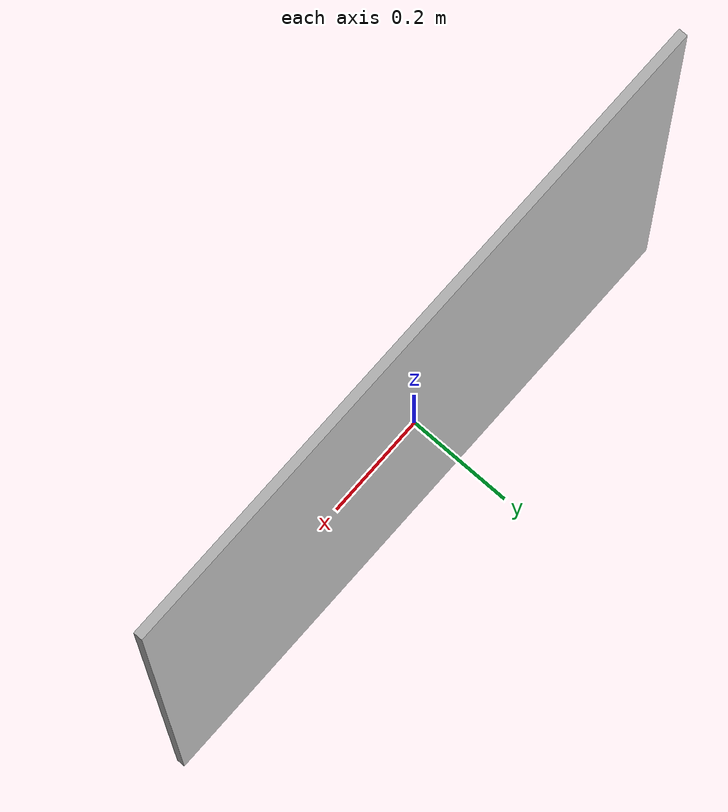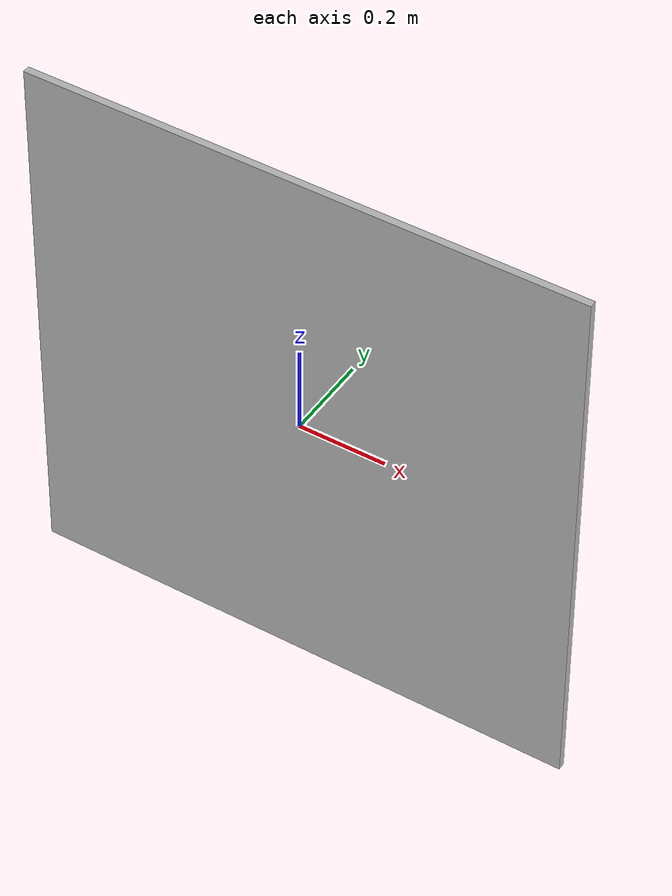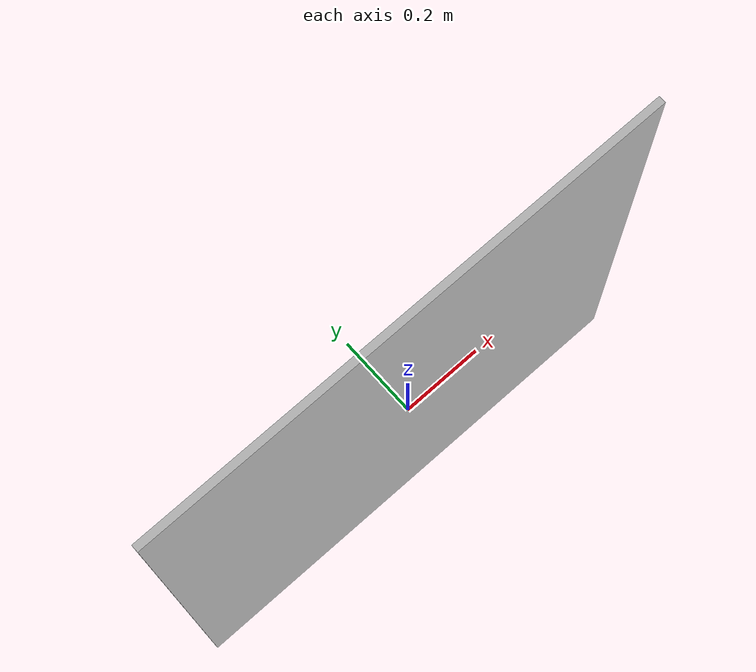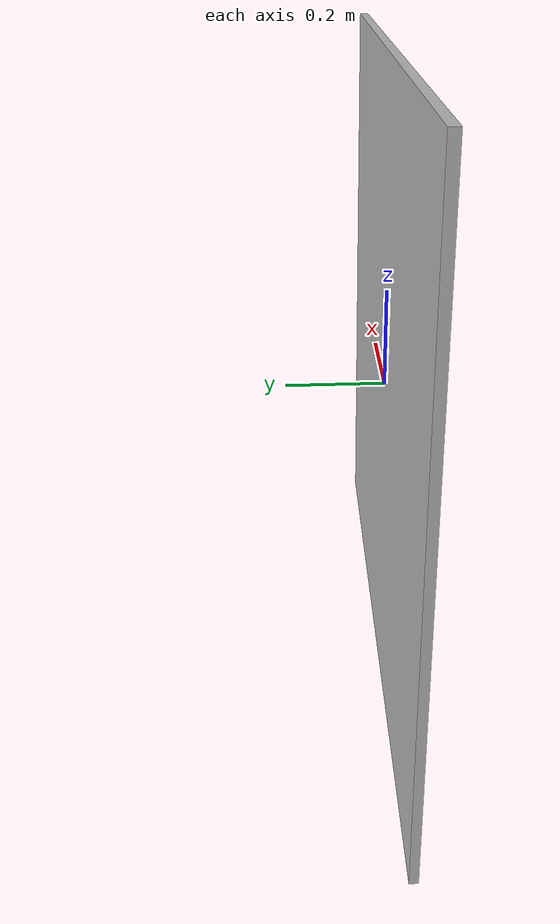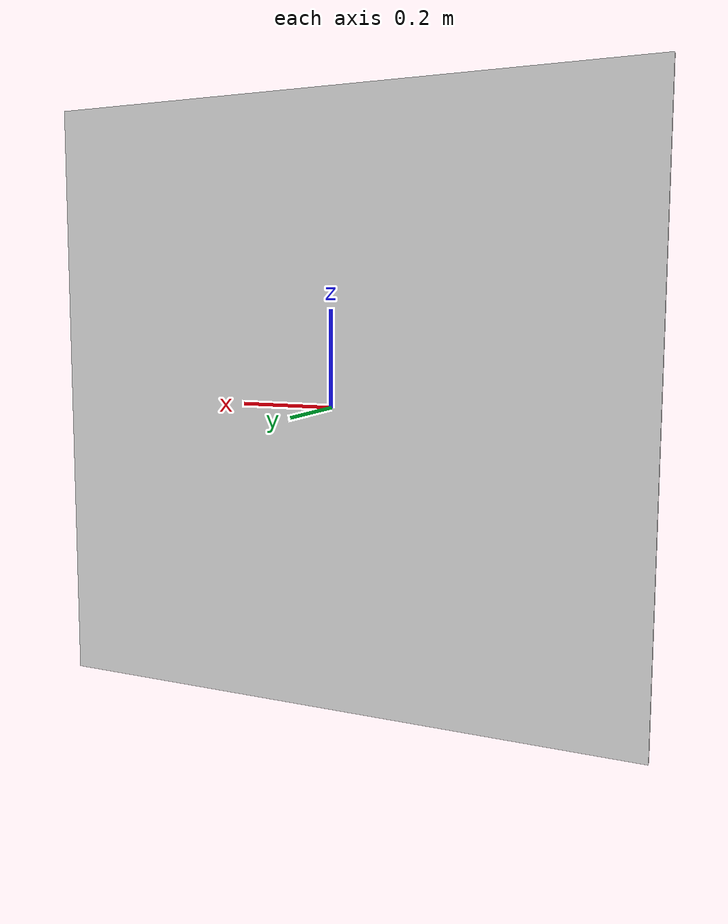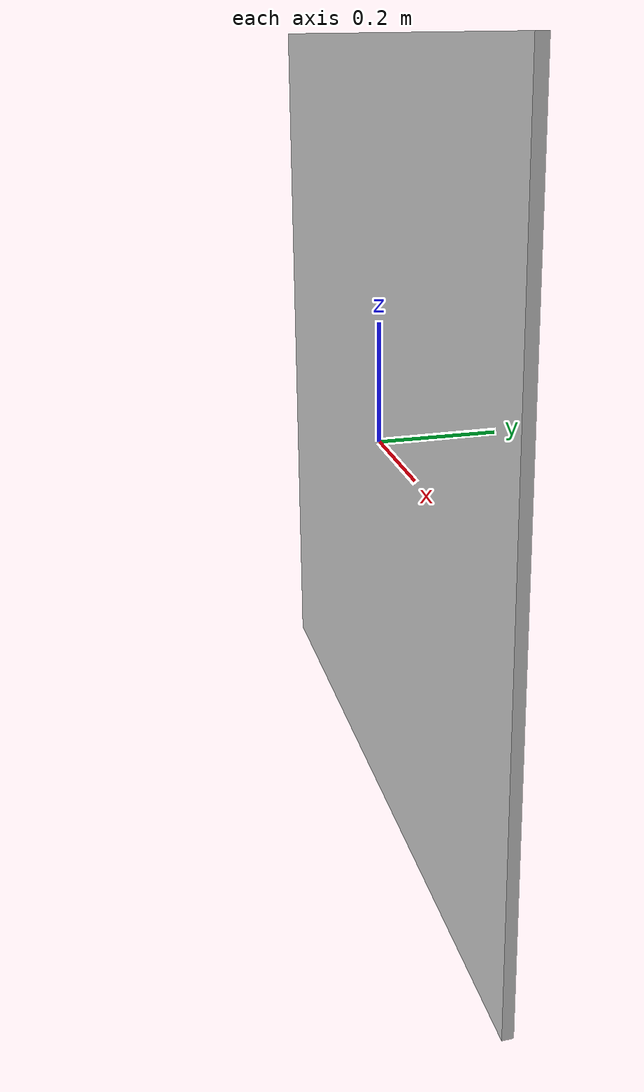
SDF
<?xml version="1.0" ?>
<sdf version="1.10">
  <model name="plataforma_triangulo">
    <static>true</static>
    <link name="base_link">
      <visual name="visual">
        <geometry>
          <mesh>
            <uri>model://sae/plataforma_triangulo/meshes/plataforma_triangulo.obj</uri>
            <scale>0.8 0.8 0.8</scale>
          </mesh>
        </geometry>
      </visual>
      <collision name="collision">
        <geometry>
          <mesh>
            <uri>model://sae/plataforma_triangulo/meshes/plataforma_triangulo.obj</uri>
            <scale>0.8 0.8 0.8 </scale>
          </mesh>
        </geometry>
      </collision>
    </link>
  </model>
</sdf>
